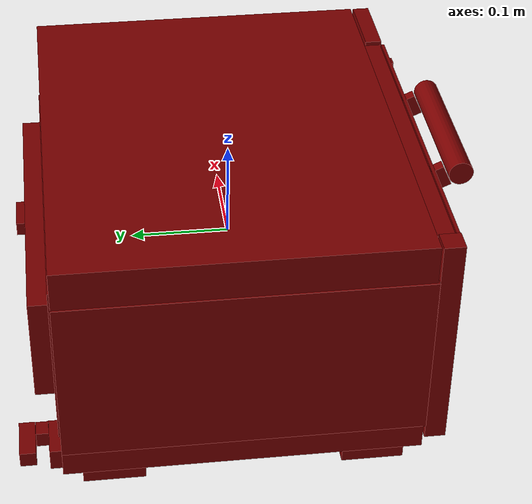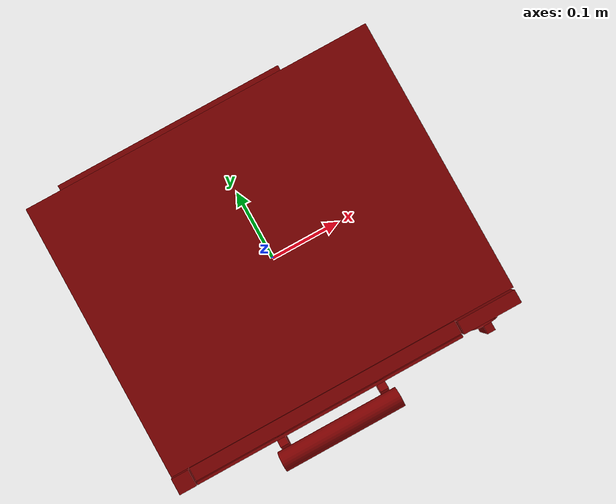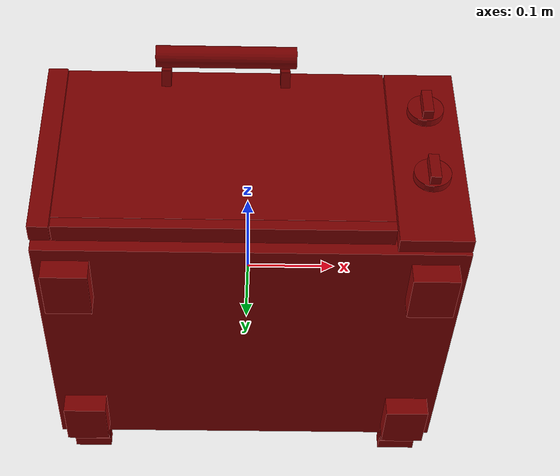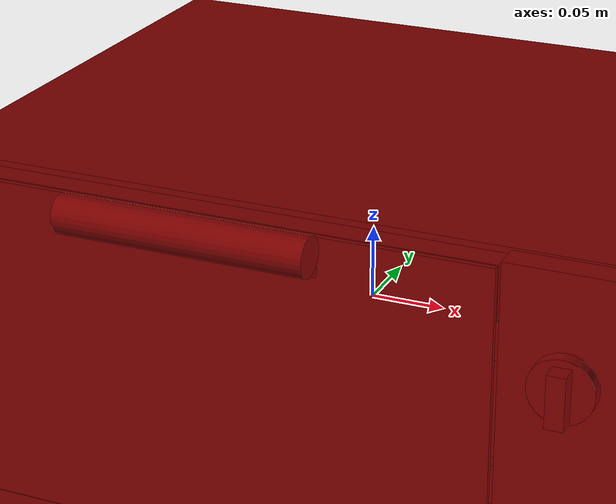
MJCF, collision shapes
<?xml version='1.0' encoding='UTF-8'?>
<mujoco model="model">
  <option timestep="0.002" gravity="0.0 0.0 -9.81"/>
  <compiler angle="radian"/>
  <asset>
    <mesh file="visuals/door.obj" name="door_vis"/>
    <mesh file="visuals/knob_temp.obj" name="knob_temp_vis"/>
    <mesh file="visuals/knob_time.obj" name="knob_time_vis"/>
    <mesh file="visuals/rack0.obj" name="rack0_vis"/>
    <mesh file="visuals/rack1.obj" name="rack1_vis"/>
    <mesh file="visuals/Body001.obj" name="Body001_vis"/>
    <mesh file="visuals/window.obj" name="window_vis"/>
    <texture file="visuals/T_BC001.png" name="Body001_material" type="2d"/>
    <material name="Body001_material" rgba="1 1 1 1.0" texture="Body001_material" shininess="0.6668214201927185" specular="1.5"/>
    <texture file="visuals/T_BC001.png" name="door_material" type="2d"/>
    <material name="door_material" rgba="1 1 1 1.0" texture="door_material" shininess="0.6668214201927185" specular="1"/>
    <texture file="visuals/T_BC001.png" name="window_material" type="2d"/>
    <material name="window_material" rgba="1 1 1 0.800000011920929" texture="window_material" shininess="0.6668214201927185" specular="0.3103448502657381"/>
    <texture file="visuals/T_BC001.png" name="knob_temp_material" type="2d"/>
    <material name="knob_temp_material" rgba="1 1 1 1.0" texture="knob_temp_material" shininess="0.6668214201927185" specular="0.3103448502657381"/>
    <texture file="visuals/T_BC001.png" name="knob_time_material" type="2d"/>
    <material name="knob_time_material" rgba="1 1 1 1.0" texture="knob_time_material" shininess="0.6668214201927185" specular="0.3103448502657381"/>
    <texture file="visuals/T_BC001.png" name="rack0_material" type="2d"/>
    <material name="rack0_material" rgba="1 1 1 1.0" texture="rack0_material" shininess="0.6668214201927185" specular="2"/>
    <texture file="visuals/T_BC001.png" name="rack1_material" type="2d"/>
    <material name="rack1_material" rgba="1 1 1 1.0" texture="rack1_material" shininess="0.6668214201927185" specular="2"/>
  </asset>
  <default>
    <default class="visual">
      <geom conaffinity="0" contype="0" group="1" type="mesh"/>
    </default>
    <default class="collision">
      <geom group="0" rgba="0.5 0 0 0.5"/>
    </default>
    <default class="spawn">
      <geom group="0" rgba="1 1 1 0.5" contype="0" conaffinity="0"/>
      <site group="0" rgba="1 1 1 0.5"/>
    </default>
    <default class="region">
      <geom group="1" conaffinity="0" contype="0" rgba="0 1 0 0"/>
    </default>
  </default>
  <worldbody>
    <body>
      <body name="object">
        <geom mesh="Body001_vis" type="mesh" solimp="0.998 0.998 0.001" solref="0.001 1" friction="0.95 0.3 0.1" class="visual" material="Body001_material"/>
        <geom class="collision" type="box" pos="0.0004402888298500329 0.010045657865703106 0.10885252803564072" size="0.22454264760017395 0.17522424459457397 0.01976315677165985" quat="1.0 0.0 0.0 0.0"/>
        <geom class="collision" type="box" pos="0.0004402888298500329 0.010045657865703106 -0.10062731802463531" size="0.22454264760017395 0.17522424459457397 0.012706412933766842" quat="1.0 0.0 0.0 0.0"/>
        <geom class="collision" type="box" pos="-0.18890202045440674 -0.11935637891292572 -0.1252499371767044" size="0.02434260956943035 0.03055659867823124 0.011036461219191551" quat="1.0 0.0 0.0 0.0"/>
        <geom class="collision" type="box" pos="-0.18890202045440674 0.13585886359214783 -0.125095397233963" size="0.02434260956943035 0.03055659867823124 0.010881921276450157" quat="1.0 0.0 0.0 0.0"/>
        <geom class="collision" type="box" pos="0.18905308842658997 0.13585886359214783 -0.125095397233963" size="0.02434260956943035 0.03055659867823124 0.010881921276450157" quat="1.0 0.0 0.0 0.0"/>
        <geom class="collision" type="box" pos="0.18905308842658997 -0.11935637891292572 -0.1252499371767044" size="0.02434260956943035 0.03055659867823124 0.011036461219191551" quat="1.0 0.0 0.0 0.0"/>
        <geom class="collision" type="box" pos="0.18555918335914612 0.0089851263910532 0.0007319003343582153" size="0.03942372649908066 0.1762847751379013 0.0876837819814682" quat="1.0 0.0 0.0 0.0"/>
        <geom class="collision" type="box" pos="-0.21336719393730164 0.0089851263910532 0.0007318967254832387" size="0.011907530017197132 0.1762847751379013 0.0876837819814682" quat="1.0 0.0 0.0 0.0"/>
        <geom class="collision" type="box" pos="-0.02708853967487812 0.1616283506155014 0.0007318967254832387" size="0.17258717119693756 0.025910113006830215 0.0876837819814682" quat="1.0 0.0 0.0 0.0"/>
        <geom class="collision" type="box" pos="0.1894703209400177 0.18198078870773315 -0.10667018592357635" size="0.021808959543704987 0.015137911774218082 0.011139695532619953" quat="1.0 0.0 0.0 0.0"/>
        <geom class="collision" type="box" pos="0.1894703209400177 0.21774496138095856 -0.10345733165740967" size="0.021808959543704987 0.00792873464524746 0.007926847785711288" quat="1.0 0.0 0.0 0.0"/>
        <geom class="collision" type="box" pos="0.17624805867671967 0.2034703940153122 -0.10345733165740967" size="0.008586686104536057 0.006191295105963945 0.007926847785711288" quat="1.0 0.0 0.0 0.0"/>
        <geom class="collision" type="box" pos="-0.17602120339870453 0.2034703940153122 -0.10345733165740967" size="0.008586686104536057 0.006191295105963945 0.007926847785711288" quat="1.0 0.0 0.0 0.0"/>
        <geom class="collision" type="box" pos="-0.1887224018573761 0.2179938405752182 -0.10345733165740967" size="0.021808959543704987 0.00792873464524746 0.007926847785711288" quat="1.0 0.0 0.0 0.0"/>
        <geom class="collision" type="box" pos="-0.1887224018573761 0.18198078870773315 -0.10667018592357635" size="0.021808959543704987 0.015137911774218082 0.011139695532619953" quat="1.0 0.0 0.0 0.0"/>
        <geom class="collision" type="box" pos="-0.2143566906452179 -0.17723454535007477 0.013637062162160873" size="0.010918035171926022 0.01031876727938652 0.11492250114679337" quat="1.0 0.0 0.0 0.0"/>
        <geom class="collision" type="box" pos="0.1867937594652176 -0.1765420138835907 0.008498180657625198" size="0.03787625953555107 0.008540074340999126 0.12006138265132904" quat="1.0 0.0 0.0 0.0"/>
        <geom class="collision" type="box" pos="-0.1954219490289688 -0.0036159383598715067 -0.025887541472911835" size="0.005505953915417194 0.1272565871477127 0.00450934749096632" quat="1.0 0.0 0.0 0.0"/>
        <geom class="collision" type="box" pos="-0.1954219490289688 -0.0036159383598715067 0.04098421335220337" size="0.005505953915417194 0.1272565871477127 0.00592554546892643" quat="1.0 0.0 0.0 0.0"/>
        <geom class="collision" type="box" pos="0.14067420363426208 -0.0036159383598715067 0.04098421335220337" size="0.005505953915417194 0.1272565871477127 0.00592554546892643" quat="1.0 0.0 0.0 0.0"/>
        <geom class="collision" type="box" pos="0.14067420363426208 -0.0036159383598715067 -0.025887541472911835" size="0.005505953915417194 0.1272565871477127 0.00450934749096632" quat="1.0 0.0 0.0 0.0"/>
        <geom class="collision" type="box" pos="0.1404481828212738 -0.12228400260210037 -0.06994109600782394" size="0.005731981247663498 0.008588536642491817 0.01425912231206894" quat="1.0 0.0 0.0 0.0"/>
        <geom class="collision" type="box" pos="-0.19614183902740479 -0.12228400260210037 -0.06994109600782394" size="0.005731981247663498 0.008588536642491817 0.01425912231206894" quat="1.0 0.0 0.0 0.0"/>
        <geom class="collision" type="box" pos="-0.0279858261346817 -0.12210918962955475 -0.07012439519166946" size="0.16276955604553223 0.005464079324156046 0.005500618368387222" quat="1.0 0.0 0.0 0.0"/>
        <geom class="collision" type="box" pos="-0.0279858261346817 0.11244776844978333 -0.07012439519166946" size="0.16276955604553223 0.007923397235572338 0.005500618368387222" quat="1.0 0.0 0.0 0.0"/>
        <geom class="collision" type="box" pos="-0.19614183902740479 0.1122729554772377 -0.06994109600782394" size="0.005731981247663498 0.006129218265414238 0.01425912231206894" quat="1.0 0.0 0.0 0.0"/>
        <geom class="collision" type="box" pos="0.1404481828212738 0.1122729554772377 -0.06994109600782394" size="0.005731981247663498 0.011047854088246822 0.01425912231206894" quat="1.0 0.0 0.0 0.0"/>
        <geom class="collision" type="box" pos="-0.03499678522348404 0.19661979377269745 0.015569886192679405" size="0.1559271663427353 0.00983437616378069 0.05393679067492485" quat="1.0 0.0 0.0 0.0"/>
        <body name="door">
          <joint axis="1.0 0.0 0.0" pos="-0.027686558663845062 -0.16469235718250275 -0.11179716140031815" limited="true" name="door_joint" range="0.0 1.3707963267948966" type="hinge" damping="1" frictionloss="1" armature=".01" stiffness="0.25" springref="-0.5"/>
          <geom mesh="door_vis" type="mesh" solimp="0.998 0.998 0.001" solref="0.001 1" friction="0.95 0.3 0.1" class="visual" material="door_material"/>
          <geom class="collision" type="box" pos="-0.027722835540771484 -0.18622271716594696 0.01825668103992939" size="0.17470547556877136 0.0017727639060467482 0.1071329265832901" quat="1.0 0.0 0.0 0.0" name="door_main"/>
          <geom class="collision" type="box" pos="-0.02755201980471611 -0.17721495032310486 -0.09515944123268127" size="0.1745843142271042 0.01078052818775177 0.006002516485750675" quat="1.0 0.0 0.0 0.0"/>
          <geom class="collision" type="box" pos="-0.02755201980471611 -0.17485027015209198 0.10838085412979126" size="0.1745843142271042 0.008415838703513145 0.017008749768137932" quat="1.0 0.0 0.0 0.0"/>
          <geom class="collision" type="cylinder" pos="-0.027476372197270393 -0.21209047734737396 0.12428169697523117" size="0.011990537866950035 0.07735488563776016" quat="0.4999999701976776 0.5 0.5 0.5" name="door_handle_main"/>
          <geom class="collision" type="box" pos="0.037739258259534836 -0.19249656796455383 0.1149909570813179" size="0.005254700314253569 0.01107038464397192 0.008938932791352272" quat="0.8413723111152649 0.5404559373855591 1.2000532509616392e-16 -3.521320069738721e-24"/>
          <geom class="collision" type="box" pos="-0.09309419244527817 -0.19249656796455383 0.1149909570813179" size="0.005254700314253569 0.01107038464397192 0.008938932791352272" quat="0.8413723111152649 0.5404559373855591 -1.2000532509616392e-16 -5.6228522265651906e-24"/>
          <body name="window">
            <geom mesh="window_vis" type="mesh" solimp="0.998 0.998 0.001" solref="0.001 1" friction="0.95 0.3 0.1" class="visual" material="window_material"/>
            <geom class="collision" type="box" pos="-0.02761196903884411 -0.18577668070793152 0.0010078526102006435" size="0.15534622967243195 0.0013502391520887613 0.08596299588680267" quat="1.0 0.0 0.0 0.0"/>
          </body>
        </body>
        <body name="knob_temp">
          <joint axis="0.0 1.0 0.0" pos="0.18851451575756073 -0.19621284306049347 0.06444986164569855" limited="true" name="knob_temp_joint" range="0.0 5.672320068981571" type="hinge" damping="0.05" frictionloss="0.75" armature="1"/>
          <geom mesh="knob_temp_vis" type="mesh" solimp="0.998 0.998 0.001" solref="0.001 1" friction="0.95 0.3 0.1" class="visual" material="knob_temp_material"/>
          <geom class="collision" type="cylinder" pos="0.18856821954250336 -0.19308550655841827 0.06455542147159576" size="0.019619394093751907 0.004214211367070675" quat="0.5 0.5 0.4999999701976776 -0.5" friction="100 0.5 0.01"/>
          <geom class="collision" type="box" pos="0.18915902078151703 -0.2034081518650055 0.06368156522512436" size="0.005483042914420366 0.0055952612310647964 0.016020799055695534" quat="1.0 0.0 0.0 0.0" name="knob_temp_main" friction="100 0.5 0.01"/>
        </body>
        <body name="knob_time">
          <joint axis="0.0 1.0 0.0" pos="0.1876315027475357 -0.19621284306049347 -0.029810750856995583" limited="true" name="knob_time_joint" range="0.0 3.9269908169872414" type="hinge" damping="0.05" frictionloss="0.75" armature="1"/>
          <geom mesh="knob_time_vis" type="mesh" solimp="0.998 0.998 0.001" solref="0.001 1" friction="0.95 0.3 0.1" class="visual" material="knob_time_material"/>
          <geom class="collision" type="cylinder" pos="0.18768520653247833 -0.19308550655841827 -0.029705191031098366" size="0.019619394093751907 0.004214211367070675" quat="0.5 0.5 0.4999999701976776 -0.5" friction="100 0.5 0.01"/>
          <geom class="collision" type="box" pos="0.188276007771492 -0.2034081518650055 -0.03057904727756977" size="0.005483042914420366 0.0055952612310647964 0.016020799055695534" quat="1.0 0.0 0.0 0.0" name="knob_time_main" friction="100 0.5 0.01"/>
        </body>
        <body name="rack0">
          <geom class="region" name="reg_rack0" type="box" pos="-0.027495823800563812 -0.0058242082595825195 0.016371656209230423" size="0.16199562495946884 0.13798974251747131 0.03132810613512993"/>
          <joint axis="0.0 -1.0 0.0" pos="-0.02741917222738266 -0.005376391112804413 -0.01794910803437233" limited="true" name="rack0_joint" range="0.0 0.24" type="slide" damping="1" frictionloss="1" armature=".01" stiffness="0.05"/>
          <geom mesh="rack0_vis" type="mesh" solimp="0.998 0.998 0.001" solref="0.001 1" friction="0.95 0.3 0.1" class="visual" material="rack0_material"/>
          <geom class="collision" type="box" pos="-0.0274185948073864 -0.004809289705008268 -0.018004778772592545" size="0.1729416847229004 0.1401827484369278 0.0028072127606719732" quat="1.0 0.0 0.0 0.0"/>
        </body>
        <body name="rack1">
          <geom class="region" name="reg_rack1" type="box" pos="-0.027495823800563812 -0.005824156105518341 0.07168656587600708" size="0.16199562495946884 0.1379897499680519 0.017795851290225984"/>
          <joint axis="0.0 -1.0 0.0" pos="-0.02741917222738266 -0.005376391112804413 0.050547681748867035" limited="true" name="rack1_joint" range="0.0 0.24" type="slide" damping="1" frictionloss="1" armature=".01" stiffness="0.05"/>
          <geom mesh="rack1_vis" type="mesh" solimp="0.998 0.998 0.001" solref="0.001 1" friction="0.95 0.3 0.1" class="visual" material="rack1_material"/>
          <geom class="collision" type="box" pos="-0.0274185948073864 -0.004809289705008268 0.05070587247610092" size="0.1729416847229004 0.1401827484369278 0.0028072127606719732" quat="1.0 0.0 0.0 0.0"/>
        </body>
        <geom class="region" name="reg_main" type="box" pos="-3.725290298461914e-09 0.01871013641357422 -0.004194125533103943" size="0.22763886845111847 0.20866088366508484 0.13524013555049896"/>
      </body>
    </body>
  </worldbody>
  <actuator>
    <motor name="door_joint_actuator" joint="door_joint" gear="50"/>
    <motor name="knob_temp_joint_actuator" joint="knob_temp_joint" gear="50"/>
    <motor name="knob_time_joint_actuator" joint="knob_time_joint" gear="50"/>
    <motor name="rack0_joint_actuator" joint="rack0_joint" gear="50"/>
    <motor name="rack1_joint_actuator" joint="rack1_joint" gear="50"/>
  </actuator>
</mujoco>
